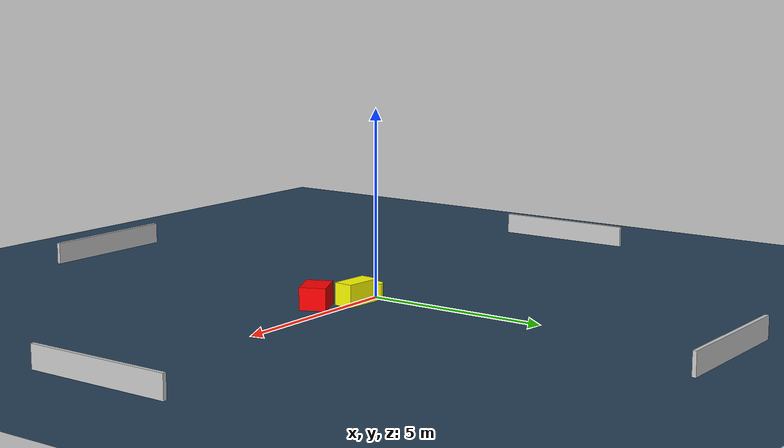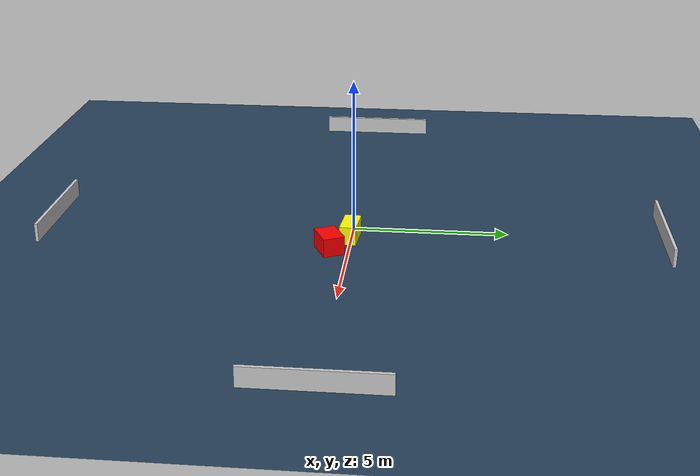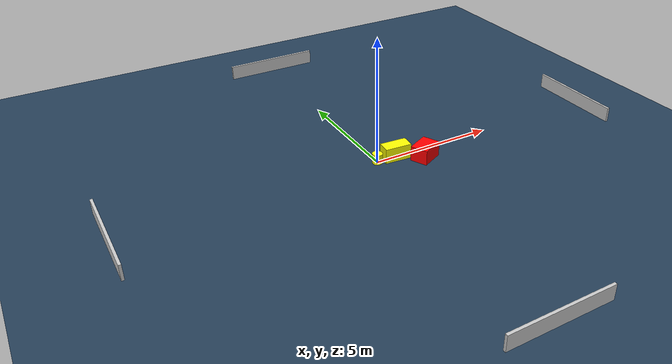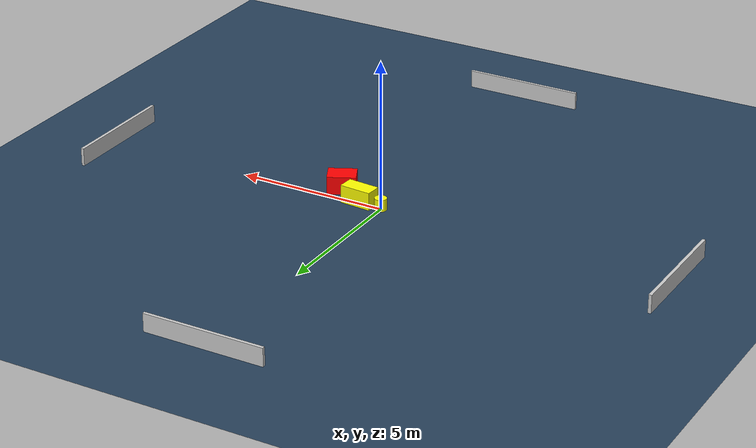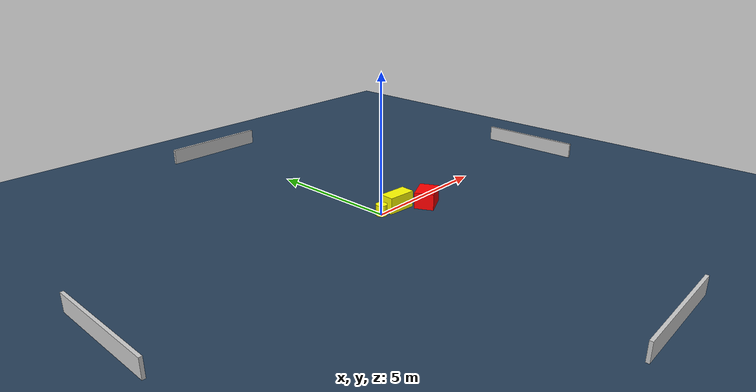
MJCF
<?xml version="1.0" ?>
<mujoco model="generated_environment">
  <option timestep="0.01" integrator="RK4" cone="elliptic"/>
  <default>
    <geom density="1"/>
  </default>
  <asset>
    <texture builtin="gradient" height="3072" name="skybox" rgb1="0.3 0.5 0.7" rgb2="0 0 0" type="skybox" width="512"/>
    <texture builtin="checker" height="300" name="groundplane" rgb1="0.2 0.3 0.4" rgb2="0.1 0.2 0.3" type="2d" width="300"/>
    <material name="groundplane" reflectance="0.2" texrepeat="5 5" texture="groundplane"/>
  </asset>
  <worldbody>
    <light dir="0 0 -1" directional="true" pos="0 0 1.5"/>
    <geom condim="3" friction="0.5 0.005 0.001" material="groundplane" name="floor" pos="0 0 0" size="0 0 0.05" type="plane"/>
    <body name="walls">
      <geom name="wall_1" condim="4" pos="-10.0 0.0 0.3" rgba="0.800000011920929 0.800000011920929 0.800000011920929 1.0" size="0.05 2.0 0.3" type="box"/>
      <geom name="wall_2" condim="4" pos="10.0 0.0 0.3" rgba="0.800000011920929 0.800000011920929 0.800000011920929 1.0" size="0.05 2.0 0.3" type="box"/>
      <geom name="wall_3" condim="4" pos="0.0 -10.0 0.3" rgba="0.800000011920929 0.800000011920929 0.800000011920929 1.0" size="2.0 0.05 0.3" type="box"/>
      <geom name="wall_4" condim="4" pos="0.0 10.0 0.3" rgba="0.800000011920929 0.800000011920929 0.800000011920929 1.0" size="2.0 0.05 0.3" type="box"/>
    </body>
    <body name="robot">
      <joint name="joint_x" type="slide" pos="0 0 0" axis="1 0 0"/>
      <joint name="joint_y" type="slide" pos="0 0 0" axis="0 1 0"/>
      <geom name="robot" type="cylinder" pos="0.0 0.0 0.2" size="0.2 0.2 0.0" mass="5.0" friction="1.0 0.005 0.0001" condim="4" rgba="1.0 1.0 0.0 1.0"/>
    </body>
    <body name="obstacle_1_movable">
      <geom name="obstacle_1_movable" condim="4" pos="0.7854663199968314 -0.03361400848856447 0.3" euler="0 0 85.62875021733707" friction="0.0 0.005 0.001" rgba="1.0 1.0 0.0 1.0" size="0.26598483433553766 0.5349499754441694 0.3" type="box" mass="0.1"/>
      <joint type="free"/>
    </body>
    <body name="obstacle_2_static">
      <geom name="obstacle_2_static" condim="4" pos="1.7516062194916648 -0.6048847810062359 0.3" euler="0 0 296.0280361716388" friction="0.0 0.005 0.001" rgba="1.0 0.0 0.0 1.0" size="0.3494401248135988 0.4703015977383929 0.3" type="box"/>
    </body>
  </worldbody>
  <actuator>
    <motor name="actuator_x" joint="joint_x" gear="1" ctrlrange="-1 1"/>
    <motor name="actuator_y" joint="joint_y" gear="1" ctrlrange="-1 1"/>
  </actuator>
</mujoco>
